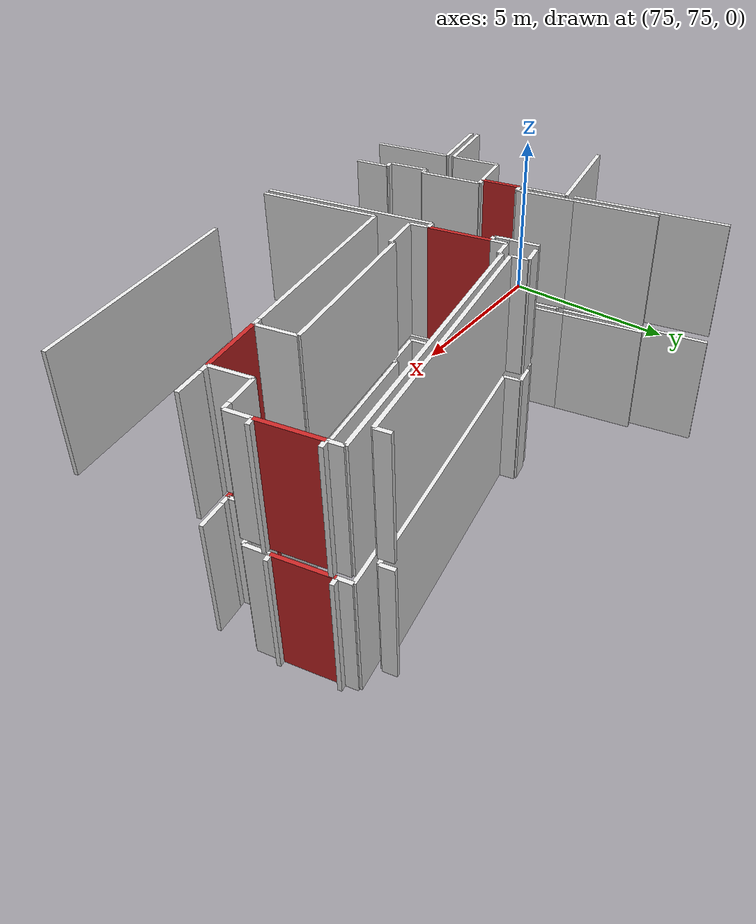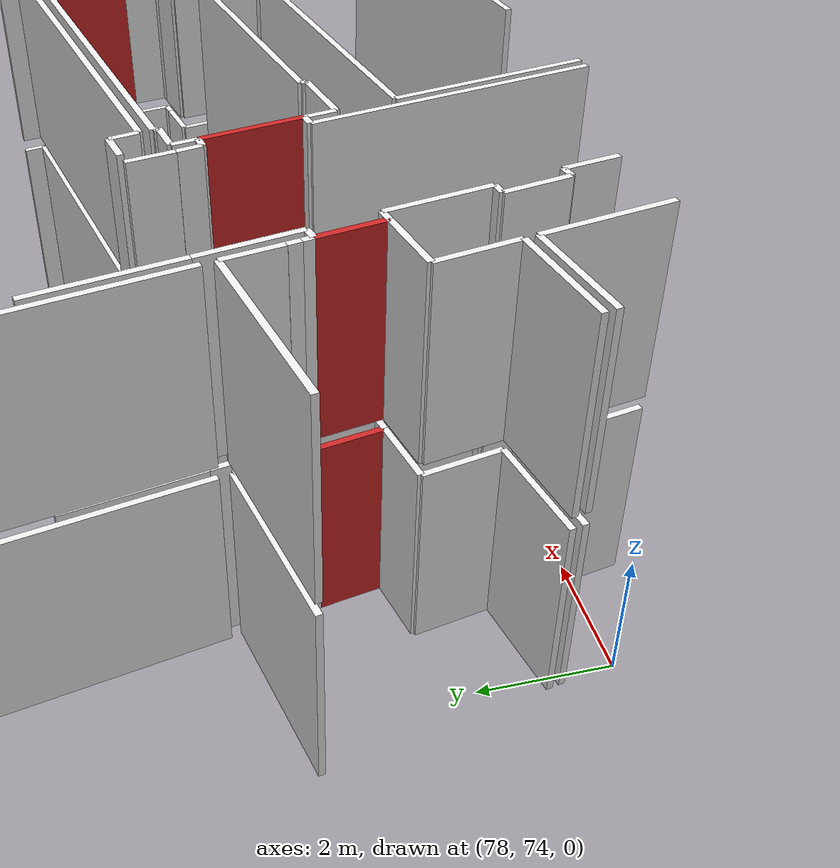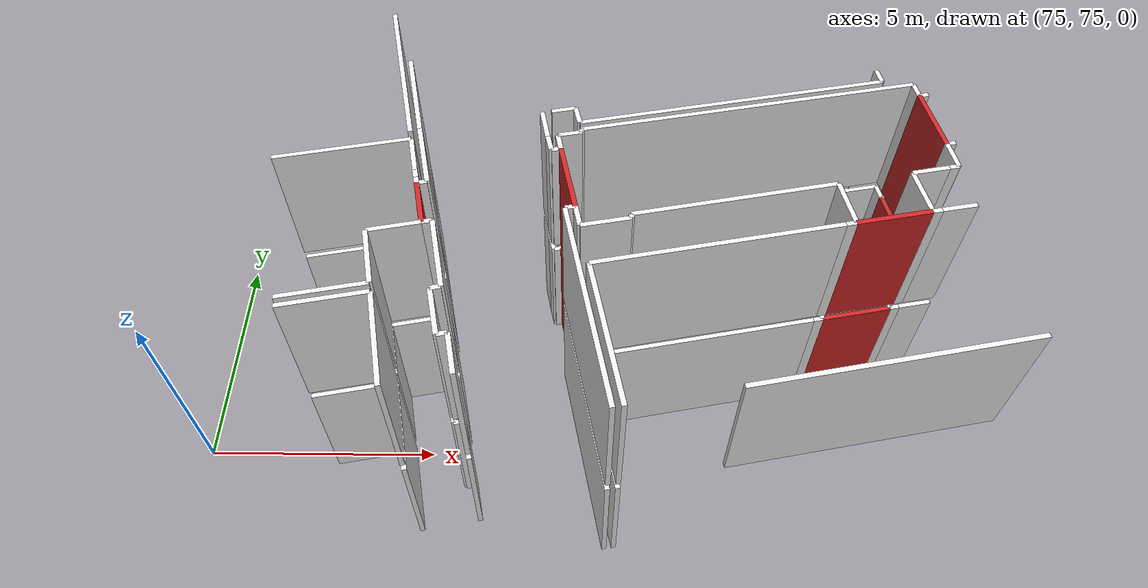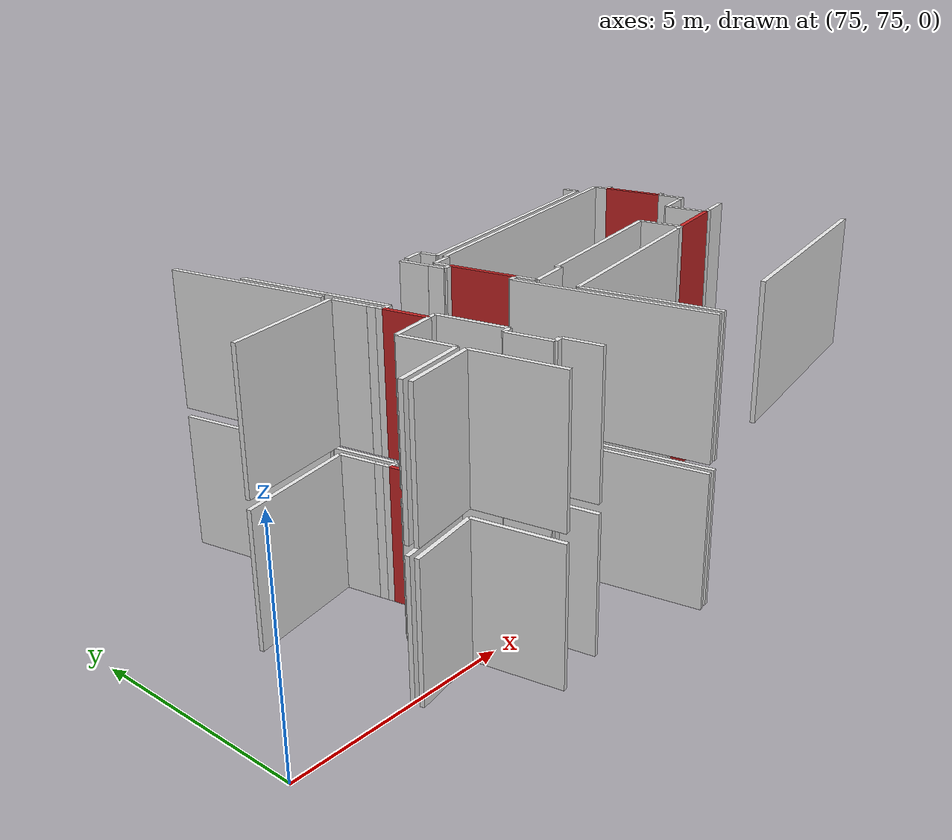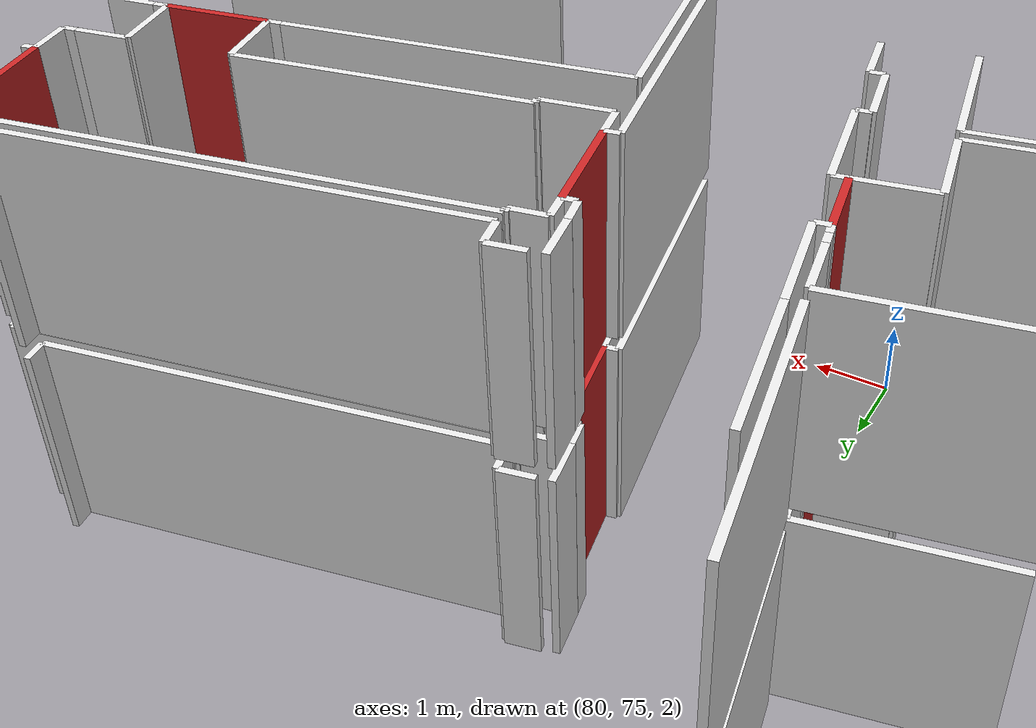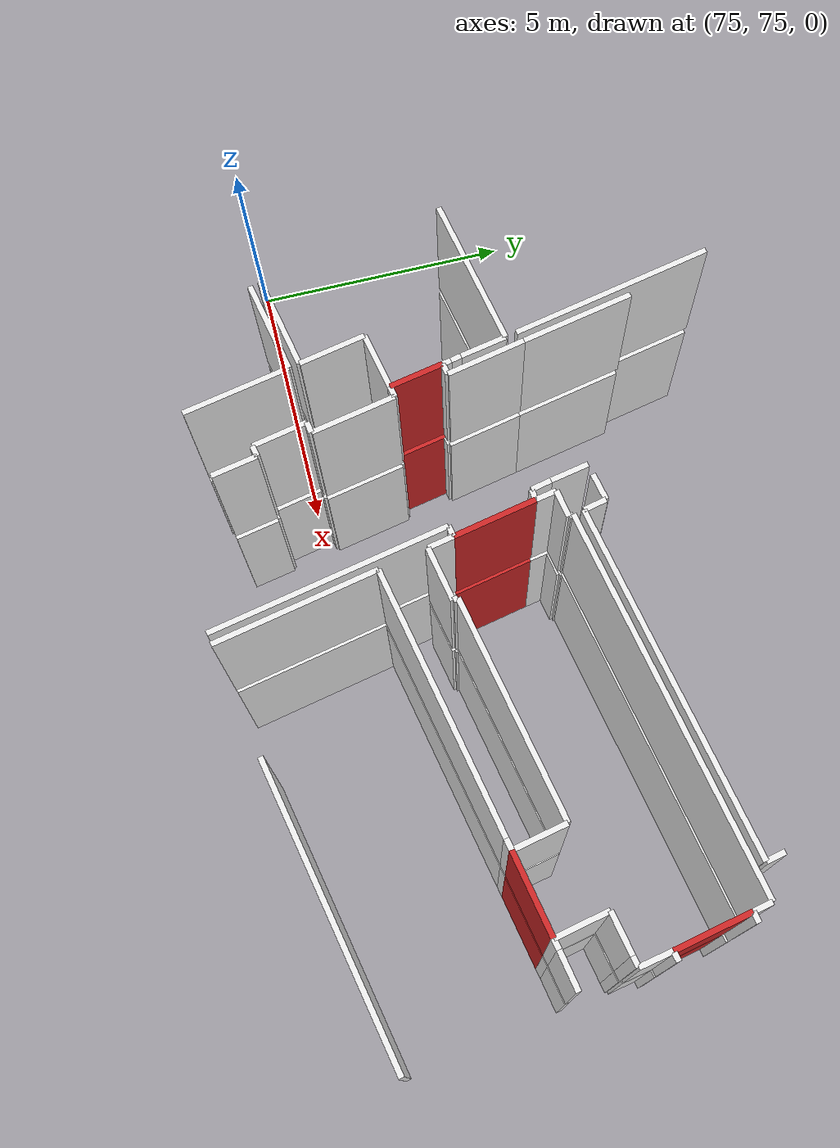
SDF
<sdf version="1.6">
 <world name="default">
  <model name="wall_80.2_77.2_0.0">
   <static>true</static>
   <pose>80.19499999997788 77.22500000009313 1.5 0 0 -1.3773690000310248</pose>
   <link name="link">
    <visual name="visual">
     <geometry><box><size>0.9884331031966657 0.1 3</size></box></geometry>
     <material>
      <script><uri>file://media/materials/scripts/gazebo.material</uri><name>Gazebo/Red</name></script>
     </material>
    </visual>
   </link>
  </model>
  <model name="wall_89.2_76.9_0.0">
   <static>true</static>
   <pose>89.17999999999302 76.94499999983236 1.5 0 0 0.19349440931601616</pose>
   <link name="link">
    <visual name="visual">
     <geometry><box><size>1.508144555394632 0.1 3</size></box></geometry>
     <material>
      <script><uri>file://media/materials/scripts/gazebo.material</uri><name>Gazebo/Red</name></script>
     </material>
    </visual>
   </link>
  </model>
  <model name="wall_83.0_77.9_0.0">
   <static>true</static>
   <pose>83.01999999998952 77.89500000001863 1.5 0 0 -1.3721104451170056</pose>
   <link name="link">
    <visual name="visual">
     <geometry><box><size>1.51990131280261 0.1 3</size></box></geometry>
     <material>
      <script><uri>file://media/materials/scripts/gazebo.material</uri><name>Gazebo/Red</name></script>
     </material>
    </visual>
   </link>
  </model>
  <model name="wall_90.4_79.5_0.0">
   <static>true</static>
   <pose>90.41000000000349 79.52499999990687 1.5 0 0 -1.369193218179265</pose>
   <link name="link">
    <visual name="visual">
     <geometry><box><size>1.3983204211800917 0.1 3</size></box></geometry>
     <material>
      <script><uri>file://media/materials/scripts/gazebo.material</uri><name>Gazebo/Red</name></script>
     </material>
    </visual>
   </link>
  </model>
  <model name="wall_79.8_76.6_0.0">
   <static>true</static>
   <pose>79.77499999999418 76.63500000000931 1.5 0 0 -2.9404657673681704</pose>
   <link name="link">
    <visual name="visual">
     <geometry><box><size>1.0511898021373587 0.1 3</size></box></geometry>
     <material>
      <script><uri>file://media/materials/scripts/gazebo.material</uri><name>Gazebo/White</name></script>
     </material>
    </visual>
   </link>
  </model>
  <model name="wall_79.4_75.9_0.0">
   <static>true</static>
   <pose>79.38000000000466 75.92999999993481 1.5 0 0 -1.3734007669077033</pose>
   <link name="link">
    <visual name="visual">
     <geometry><box><size>1.2237646829864708 0.1 3</size></box></geometry>
     <material>
      <script><uri>file://media/materials/scripts/gazebo.material</uri><name>Gazebo/White</name></script>
     </material>
    </visual>
   </link>
  </model>
  <model name="wall_78.7_75.2_0.0">
   <static>true</static>
   <pose>78.66500000000815 75.16500000003725 1.5 0 0 -2.946501237082923</pose>
   <link name="link">
    <visual name="visual">
     <geometry><box><size>1.7022925717968513 0.1 3</size></box></geometry>
     <material>
      <script><uri>file://media/materials/scripts/gazebo.material</uri><name>Gazebo/White</name></script>
     </material>
    </visual>
   </link>
  </model>
  <model name="wall_78.5_78.6_0.0">
   <static>true</static>
   <pose>78.51999999998952 78.61499999999069 1.5 0 0 0.19383178298877288</pose>
   <link name="link">
    <visual name="visual">
     <geometry><box><size>2.7515268488324223 0.1 3</size></box></geometry>
     <material>
      <script><uri>file://media/materials/scripts/gazebo.material</uri><name>Gazebo/White</name></script>
     </material>
    </visual>
   </link>
  </model>
  <model name="wall_80.0_78.5_0.0">
   <static>true</static>
   <pose>79.95000000001164 78.46499999985099 1.5 0 0 -1.3803612113601613</pose>
   <link name="link">
    <visual name="visual">
     <geometry><box><size>0.8452810184394953 0.1 3</size></box></geometry>
     <material>
      <script><uri>file://media/materials/scripts/gazebo.material</uri><name>Gazebo/White</name></script>
     </material>
    </visual>
   </link>
  </model>
  <model name="wall_80.1_78.0_0.0">
   <static>true</static>
   <pose>80.05000000001746 77.95499999984168 1.5 0 0 -1.363300100406013</pose>
   <link name="link">
    <visual name="visual">
     <geometry><box><size>0.19416487833047835 0.1 3</size></box></geometry>
     <material>
      <script><uri>file://media/materials/scripts/gazebo.material</uri><name>Gazebo/White</name></script>
     </material>
    </visual>
   </link>
  </model>
  <model name="wall_80.1_77.8_0.0">
   <static>true</static>
   <pose>80.08499999999185 77.78499999991618 1.5 0 0 -1.373400767019641</pose>
   <link name="link">
    <visual name="visual">
     <geometry><box><size>0.15297058531052382 0.1 3</size></box></geometry>
     <material>
      <script><uri>file://media/materials/scripts/gazebo.material</uri><name>Gazebo/White</name></script>
     </material>
    </visual>
   </link>
  </model>
  <model name="wall_79.5_80.9_0.0">
   <static>true</static>
   <pose>79.46499999999651 80.88500000000931 1.5 0 0 1.7703218088940849</pose>
   <link name="link">
    <visual name="visual">
     <geometry><box><size>3.683069372020626 0.1 3</size></box></geometry>
     <material>
      <script><uri>file://media/materials/scripts/gazebo.material</uri><name>Gazebo/White</name></script>
     </material>
    </visual>
   </link>
  </model>
  <model name="wall_79.7_74.2_0.0">
   <static>true</static>
   <pose>79.72999999998137 74.17500000004657 1.5 0 0 1.76520086863083</pose>
   <link name="link">
    <visual name="visual">
     <geometry><box><size>1.967053634411279 0.1 3</size></box></geometry>
     <material>
      <script><uri>file://media/materials/scripts/gazebo.material</uri><name>Gazebo/White</name></script>
     </material>
    </visual>
   </link>
  </model>
  <model name="wall_78.7_75.0_0.0">
   <static>true</static>
   <pose>78.7049999999872 74.97500000009313 1.5 0 0 -2.946501237082923</pose>
   <link name="link">
    <visual name="visual">
     <geometry><box><size>1.7022925717968513 0.1 3</size></box></geometry>
     <material>
      <script><uri>file://media/materials/scripts/gazebo.material</uri><name>Gazebo/White</name></script>
     </material>
    </visual>
   </link>
  </model>
  <model name="wall_88.3_76.8_0.0">
   <static>true</static>
   <pose>88.33999999999651 76.77999999979511 1.5 0 0 -2.9441970935720057</pose>
   <link name="link">
    <visual name="visual">
     <geometry><box><size>0.20396078056243275 0.1 3</size></box></geometry>
     <material>
      <script><uri>file://media/materials/scripts/gazebo.material</uri><name>Gazebo/White</name></script>
     </material>
    </visual>
   </link>
  </model>
  <model name="wall_85.8_76.3_0.0">
   <static>true</static>
   <pose>85.83499999999185 76.28499999991618 1.5 0 0 -2.946597089187742</pose>
   <link name="link">
    <visual name="visual">
     <geometry><box><size>4.902917498739577 0.1 3</size></box></geometry>
     <material>
      <script><uri>file://media/materials/scripts/gazebo.material</uri><name>Gazebo/White</name></script>
     </material>
    </visual>
   </link>
  </model>
  <model name="wall_83.7_74.3_0.0">
   <static>true</static>
   <pose>83.72500000000582 74.34000000008382 1.5 0 0 -1.3727467447894708</pose>
   <link name="link">
    <visual name="visual">
     <geometry><box><size>2.9986163475345844 0.1 3</size></box></geometry>
     <material>
      <script><uri>file://media/materials/scripts/gazebo.material</uri><name>Gazebo/White</name></script>
     </material>
    </visual>
   </link>
  </model>
  <model name="wall_90.5_77.2_0.0">
   <static>true</static>
   <pose>90.4549999999872 77.19499999983236 1.5 0 0 -2.9553698133356825</pose>
   <link name="link">
    <visual name="visual">
     <geometry><box><size>0.7021395872432744 0.1 3</size></box></geometry>
     <material>
      <script><uri>file://media/materials/scripts/gazebo.material</uri><name>Gazebo/White</name></script>
     </material>
    </visual>
   </link>
  </model>
  <model name="wall_90.0_77.1_0.0">
   <static>true</static>
   <pose>90.01499999998487 77.10999999986961 1.5 0 0 -2.9340964269693144</pose>
   <link name="link">
    <visual name="visual">
     <geometry><box><size>0.19416487839942884 0.1 3</size></box></geometry>
     <material>
      <script><uri>file://media/materials/scripts/gazebo.material</uri><name>Gazebo/White</name></script>
     </material>
    </visual>
   </link>
  </model>
  <model name="wall_80.4_76.8_0.0">
   <static>true</static>
   <pose>80.38999999998487 76.76000000000931 1.5 0 0 -2.944197095810762</pose>
   <link name="link">
    <visual name="visual">
     <geometry><box><size>0.20396078047110908 0.1 3</size></box></geometry>
     <material>
      <script><uri>file://media/materials/scripts/gazebo.material</uri><name>Gazebo/White</name></script>
     </material>
    </visual>
   </link>
  </model>
  <model name="wall_80.2_77.7_0.0">
   <static>true</static>
   <pose>80.19999999998254 77.72999999998137 1.5 0 0 0.19739556001778746</pose>
   <link name="link">
    <visual name="visual">
     <geometry><box><size>0.20396078056243275 0.1 3</size></box></geometry>
     <material>
      <script><uri>file://media/materials/scripts/gazebo.material</uri><name>Gazebo/White</name></script>
     </material>
    </visual>
   </link>
  </model>
  <model name="wall_80.2_78.5_0.0">
   <static>true</static>
   <pose>80.15499999999884 78.45999999996275 1.5 0 0 1.772251404259705</pose>
   <link name="link">
    <visual name="visual">
     <geometry><box><size>1.449310180663977 0.1 3</size></box></geometry>
     <material>
      <script><uri>file://media/materials/scripts/gazebo.material</uri><name>Gazebo/White</name></script>
     </material>
    </visual>
   </link>
  </model>
  <model name="wall_79.8_80.2_0.0">
   <static>true</static>
   <pose>79.80999999999767 80.17500000004657 1.5 0 0 1.7672349491259145</pose>
   <link name="link">
    <visual name="visual">
     <geometry><box><size>2.0494145507905532 0.1 3</size></box></geometry>
     <material>
      <script><uri>file://media/materials/scripts/gazebo.material</uri><name>Gazebo/White</name></script>
     </material>
    </visual>
   </link>
  </model>
  <model name="wall_82.5_79.3_0.0">
   <static>true</static>
   <pose>82.53499999997439 79.31000000005588 1.5 0 0 -1.3818991458298349</pose>
   <link name="link">
    <visual name="visual">
     <geometry><box><size>0.6923149569349915 0.1 3</size></box></geometry>
     <material>
      <script><uri>file://media/materials/scripts/gazebo.material</uri><name>Gazebo/White</name></script>
     </material>
    </visual>
   </link>
  </model>
  <model name="wall_82.6_78.8_0.0">
   <static>true</static>
   <pose>82.63999999998487 78.79000000003725 1.5 0 0 -1.3521273810750338</pose>
   <link name="link">
    <visual name="visual">
     <geometry><box><size>0.3687817786225433 0.1 3</size></box></geometry>
     <material>
      <script><uri>file://media/materials/scripts/gazebo.material</uri><name>Gazebo/White</name></script>
     </material>
    </visual>
   </link>
  </model>
  <model name="wall_82.8_78.6_0.0">
   <static>true</static>
   <pose>82.77499999999418 78.625 1.5 0 0 0.15660187831921837</pose>
   <link name="link">
    <visual name="visual">
     <geometry><box><size>0.19235384065968367 0.1 3</size></box></geometry>
     <material>
      <script><uri>file://media/materials/scripts/gazebo.material</uri><name>Gazebo/White</name></script>
     </material>
    </visual>
   </link>
  </model>
  <model name="wall_83.1_77.1_0.0">
   <static>true</static>
   <pose>83.06999999997788 77.12999999988824 1.5 0 0 -2.9441970935720057</pose>
   <link name="link">
    <visual name="visual">
     <geometry><box><size>0.20396078056243275 0.1 3</size></box></geometry>
     <material>
      <script><uri>file://media/materials/scripts/gazebo.material</uri><name>Gazebo/White</name></script>
     </material>
    </visual>
   </link>
  </model>
  <model name="wall_83.4_75.0_0.0">
   <static>true</static>
   <pose>83.39499999998952 74.9749999998603 1.5 0 0 -1.3743016675951543</pose>
   <link name="link">
    <visual name="visual">
     <geometry><box><size>4.353779966904442 0.1 3</size></box></geometry>
     <material>
      <script><uri>file://media/materials/scripts/gazebo.material</uri><name>Gazebo/White</name></script>
     </material>
    </visual>
   </link>
  </model>
  <model name="wall_81.1_73.9_0.0">
   <static>true</static>
   <pose>81.07000000000698 73.86499999999069 1.5 0 0 1.7612314423339088</pose>
   <link name="link">
    <visual name="visual">
     <geometry><box><size>0.8452810179822523 0.1 3</size></box></geometry>
     <material>
      <script><uri>file://media/materials/scripts/gazebo.material</uri><name>Gazebo/White</name></script>
     </material>
    </visual>
   </link>
  </model>
  <model name="wall_80.9_74.3_0.0">
   <static>true</static>
   <pose>80.88999999998487 74.26000000000931 1.5 0 0 -2.944197095810762</pose>
   <link name="link">
    <visual name="visual">
     <geometry><box><size>0.20396078047110908 0.1 3</size></box></geometry>
     <material>
      <script><uri>file://media/materials/scripts/gazebo.material</uri><name>Gazebo/White</name></script>
     </material>
    </visual>
   </link>
  </model>
  <model name="wall_80.7_74.7_0.0">
   <static>true</static>
   <pose>80.69000000000233 74.7300000002142 1.5 0 0 1.7721134351276446</pose>
   <link name="link">
    <visual name="visual">
     <geometry><box><size>1.0001999799764374 0.1 3</size></box></geometry>
     <material>
      <script><uri>file://media/materials/scripts/gazebo.material</uri><name>Gazebo/White</name></script>
     </material>
    </visual>
   </link>
  </model>
  <model name="wall_80.7_75.2_0.0">
   <static>true</static>
   <pose>80.69000000000233 75.23999999999069 1.5 0 0 0.19739555783500018</pose>
   <link name="link">
    <visual name="visual">
     <geometry><box><size>0.20396078041403173 0.1 3</size></box></geometry>
     <material>
      <script><uri>file://media/materials/scripts/gazebo.material</uri><name>Gazebo/White</name></script>
     </material>
    </visual>
   </link>
  </model>
  <model name="wall_80.6_76.0_0.0">
   <static>true</static>
   <pose>80.63999999998487 76.0199999997858 1.5 0 0 1.765660246474069</pose>
   <link name="link">
    <visual name="visual">
     <geometry><box><size>1.5493224325651649 0.1 3</size></box></geometry>
     <material>
      <script><uri>file://media/materials/scripts/gazebo.material</uri><name>Gazebo/White</name></script>
     </material>
    </visual>
   </link>
  </model>
  <model name="wall_90.6_78.9_0.0">
   <static>true</static>
   <pose>90.63999999998487 78.85999999986961 1.5 0 0 -2.9229237075104124</pose>
   <link name="link">
    <visual name="visual">
     <geometry><box><size>0.18439088914712043 0.1 3</size></box></geometry>
     <material>
      <script><uri>file://media/materials/scripts/gazebo.material</uri><name>Gazebo/White</name></script>
     </material>
    </visual>
   </link>
  </model>
  <model name="wall_90.4_80.2_0.0">
   <static>true</static>
   <pose>90.36500000001979 80.22999999998137 1.5 0 0 0.20749622662047904</pose>
   <link name="link">
    <visual name="visual">
     <geometry><box><size>0.19416487839942884 0.1 3</size></box></geometry>
     <material>
      <script><uri>file://media/materials/scripts/gazebo.material</uri><name>Gazebo/White</name></script>
     </material>
    </visual>
   </link>
  </model>
  <model name="wall_90.2_80.4_0.0">
   <static>true</static>
   <pose>90.23500000001513 80.37999999988824 1.5 0 0 -1.3677511094351602</pose>
   <link name="link">
    <visual name="visual">
     <geometry><box><size>0.34713109900965367 0.1 3</size></box></geometry>
     <material>
      <script><uri>file://media/materials/scripts/gazebo.material</uri><name>Gazebo/White</name></script>
     </material>
    </visual>
   </link>
  </model>
  <model name="wall_90.6_78.5_0.0">
   <static>true</static>
   <pose>90.60499999998137 78.5449999999255 1.5 0 0 -1.386471917872574</pose>
   <link name="link">
    <visual name="visual">
     <geometry><box><size>0.6001666433758985 0.1 3</size></box></geometry>
     <material>
      <script><uri>file://media/materials/scripts/gazebo.material</uri><name>Gazebo/White</name></script>
     </material>
    </visual>
   </link>
  </model>
  <model name="wall_90.6_78.2_0.0">
   <static>true</static>
   <pose>90.56499999997322 78.22999999998137 1.5 0 0 -2.9340964269693144</pose>
   <link name="link">
    <visual name="visual">
     <geometry><box><size>0.19416487839942884 0.1 3</size></box></geometry>
     <material>
      <script><uri>file://media/materials/scripts/gazebo.material</uri><name>Gazebo/White</name></script>
     </material>
    </visual>
   </link>
  </model>
  <model name="wall_90.1_78.1_0.0">
   <static>true</static>
   <pose>90.09499999997206 78.13500000000931 1.5 0 0 -2.9441970938593127</pose>
   <link name="link">
    <visual name="visual">
     <geometry><box><size>0.764852927020653 0.1 3</size></box></geometry>
     <material>
      <script><uri>file://media/materials/scripts/gazebo.material</uri><name>Gazebo/White</name></script>
     </material>
    </visual>
   </link>
  </model>
  <model name="wall_89.8_77.6_0.0">
   <static>true</static>
   <pose>89.81999999997788 77.57499999995343 1.5 0 0 -1.367460242796885</pose>
   <link name="link">
    <visual name="visual">
     <geometry><box><size>0.990403958191881 0.1 3</size></box></geometry>
     <material>
      <script><uri>file://media/materials/scripts/gazebo.material</uri><name>Gazebo/White</name></script>
     </material>
    </visual>
   </link>
  </model>
  <model name="wall_88.3_77.3_0.0">
   <static>true</static>
   <pose>88.33999999999651 77.28499999991618 1.5 0 0 1.7741324107929084</pose>
   <link name="link">
    <visual name="visual">
     <geometry><box><size>0.990403958191881 0.1 3</size></box></geometry>
     <material>
      <script><uri>file://media/materials/scripts/gazebo.material</uri><name>Gazebo/White</name></script>
     </material>
    </visual>
   </link>
  </model>
  <model name="wall_86.2_77.4_0.0">
   <static>true</static>
   <pose>86.22999999998137 77.37000000011176 1.5 0 0 -2.9451540312923132</pose>
   <link name="link">
    <visual name="visual">
     <geometry><box><size>4.098829101078957 0.1 3</size></box></geometry>
     <material>
      <script><uri>file://media/materials/scripts/gazebo.material</uri><name>Gazebo/White</name></script>
     </material>
    </visual>
   </link>
  </model>
  <model name="wall_84.2_76.9_0.0">
   <static>true</static>
   <pose>84.22999999998137 76.92500000004657 1.5 0 0 -1.3521273814687915</pose>
   <link name="link">
    <visual name="visual">
     <geometry><box><size>0.09219544488607884 0.1 3</size></box></geometry>
     <material>
      <script><uri>file://media/materials/scripts/gazebo.material</uri><name>Gazebo/White</name></script>
     </material>
    </visual>
   </link>
  </model>
  <model name="wall_83.8_76.8_0.0">
   <static>true</static>
   <pose>83.75 76.78499999991618 1.5 0 0 -2.950090935171577</pose>
   <link name="link">
    <visual name="visual">
     <geometry><box><size>0.9982484660355146 0.1 3</size></box></geometry>
     <material>
      <script><uri>file://media/materials/scripts/gazebo.material</uri><name>Gazebo/White</name></script>
     </material>
    </visual>
   </link>
  </model>
  <model name="wall_83.2_76.9_0.0">
   <static>true</static>
   <pose>83.21499999999651 76.9199999999255 1.5 0 0 1.7640078107115875</pose>
   <link name="link">
    <visual name="visual">
     <geometry><box><size>0.4687216657786766 0.1 3</size></box></geometry>
     <material>
      <script><uri>file://media/materials/scripts/gazebo.material</uri><name>Gazebo/White</name></script>
     </material>
    </visual>
   </link>
  </model>
  <model name="wall_82.8_78.8_0.0">
   <static>true</static>
   <pose>82.83499999999185 78.82499999995343 1.5 0 0 1.7577755969067386</pose>
   <link name="link">
    <visual name="visual">
     <geometry><box><size>0.37656340732881893 0.1 3</size></box></geometry>
     <material>
      <script><uri>file://media/materials/scripts/gazebo.material</uri><name>Gazebo/White</name></script>
     </material>
    </visual>
   </link>
  </model>
  <model name="wall_83.0_79.1_0.0">
   <static>true</static>
   <pose>83.0449999999837 79.05499999993481 1.5 0 0 0.18164883062852336</pose>
   <link name="link">
    <visual name="visual">
     <geometry><box><size>0.49819674833128924 0.1 3</size></box></geometry>
     <material>
      <script><uri>file://media/materials/scripts/gazebo.material</uri><name>Gazebo/White</name></script>
     </material>
    </visual>
   </link>
  </model>
  <model name="wall_83.3_79.1_0.0">
   <static>true</static>
   <pose>83.27999999999884 79.14000000013039 1.5 0 0 1.8157749892369648</pose>
   <link name="link">
    <visual name="visual">
     <geometry><box><size>0.08246211257503461 0.1 3</size></box></geometry>
     <material>
      <script><uri>file://media/materials/scripts/gazebo.material</uri><name>Gazebo/White</name></script>
     </material>
    </visual>
   </link>
  </model>
  <model name="wall_86.7_79.9_0.0">
   <static>true</static>
   <pose>86.73500000001513 79.86499999999069 1.5 0 0 0.1951745751129922</pose>
   <link name="link">
    <visual name="visual">
     <geometry><box><size>7.064120610446391 0.1 3</size></box></geometry>
     <material>
      <script><uri>file://media/materials/scripts/gazebo.material</uri><name>Gazebo/White</name></script>
     </material>
    </visual>
   </link>
  </model>
  <model name="wall_82.9_79.7_0.0">
   <static>true</static>
   <pose>82.90499999999884 79.72999999998137 1.5 0 0 0.20131710762522587</pose>
   <link name="link">
    <visual name="visual">
     <geometry><box><size>0.5000999899754156 0.1 3</size></box></geometry>
     <material>
      <script><uri>file://media/materials/scripts/gazebo.material</uri><name>Gazebo/White</name></script>
     </material>
    </visual>
   </link>
  </model>
  <model name="wall_83.2_79.6_0.0">
   <static>true</static>
   <pose>83.19500000000698 79.57499999995343 1.5 0 0 -1.3547113544122191</pose>
   <link name="link">
    <visual name="visual">
     <geometry><box><size>0.41976183692003244 0.1 3</size></box></geometry>
     <material>
      <script><uri>file://media/materials/scripts/gazebo.material</uri><name>Gazebo/White</name></script>
     </material>
    </visual>
   </link>
  </model>
  <model name="wall_86.4_80.0_0.0">
   <static>true</static>
   <pose>86.40499999999884 80.0 1.5 0 0 0.19648398303966225</pose>
   <link name="link">
    <visual name="visual">
     <geometry><box><size>6.454184688993883 0.1 3</size></box></geometry>
     <material>
      <script><uri>file://media/materials/scripts/gazebo.material</uri><name>Gazebo/White</name></script>
     </material>
    </visual>
   </link>
  </model>
  <model name="wall_89.5_80.8_0.0">
   <static>true</static>
   <pose>89.53500000000349 80.80000000004657 1.5 0 0 1.7738415438841244</pose>
   <link name="link">
    <visual name="visual">
     <geometry><box><size>0.34713109946574894 0.1 3</size></box></geometry>
     <material>
      <script><uri>file://media/materials/scripts/gazebo.material</uri><name>Gazebo/White</name></script>
     </material>
    </visual>
   </link>
  </model>
  <model name="wall_80.2_77.2_3.2">
   <static>true</static>
   <pose>80.19499999997788 77.22500000009313 4.7 0 0 -1.3773690000310248</pose>
   <link name="link">
    <visual name="visual">
     <geometry><box><size>0.9884331031966657 0.1 3</size></box></geometry>
     <material>
      <script><uri>file://media/materials/scripts/gazebo.material</uri><name>Gazebo/Red</name></script>
     </material>
    </visual>
   </link>
  </model>
  <model name="wall_89.2_76.9_3.2">
   <static>true</static>
   <pose>89.17999999999302 76.94499999983236 4.7 0 0 0.19349440931601616</pose>
   <link name="link">
    <visual name="visual">
     <geometry><box><size>1.508144555394632 0.1 3</size></box></geometry>
     <material>
      <script><uri>file://media/materials/scripts/gazebo.material</uri><name>Gazebo/Red</name></script>
     </material>
    </visual>
   </link>
  </model>
  <model name="wall_83.0_77.9_3.2">
   <static>true</static>
   <pose>83.01999999998952 77.89500000001863 4.7 0 0 -1.3721104451170056</pose>
   <link name="link">
    <visual name="visual">
     <geometry><box><size>1.51990131280261 0.1 3</size></box></geometry>
     <material>
      <script><uri>file://media/materials/scripts/gazebo.material</uri><name>Gazebo/Red</name></script>
     </material>
    </visual>
   </link>
  </model>
  <model name="wall_90.4_79.5_3.2">
   <static>true</static>
   <pose>90.41000000000349 79.52499999990687 4.7 0 0 -1.369193218179265</pose>
   <link name="link">
    <visual name="visual">
     <geometry><box><size>1.3983204211800917 0.1 3</size></box></geometry>
     <material>
      <script><uri>file://media/materials/scripts/gazebo.material</uri><name>Gazebo/Red</name></script>
     </material>
    </visual>
   </link>
  </model>
  <model name="wall_79.8_76.6_3.2">
   <static>true</static>
   <pose>79.77499999999418 76.63500000000931 4.7 0 0 -2.9404657673681704</pose>
   <link name="link">
    <visual name="visual">
     <geometry><box><size>1.0511898021373587 0.1 3</size></box></geometry>
     <material>
      <script><uri>file://media/materials/scripts/gazebo.material</uri><name>Gazebo/White</name></script>
     </material>
    </visual>
   </link>
  </model>
  <model name="wall_79.4_75.9_3.2">
   <static>true</static>
   <pose>79.38000000000466 75.92999999993481 4.7 0 0 -1.3734007669077033</pose>
   <link name="link">
    <visual name="visual">
     <geometry><box><size>1.2237646829864708 0.1 3</size></box></geometry>
     <material>
      <script><uri>file://media/materials/scripts/gazebo.material</uri><name>Gazebo/White</name></script>
     </material>
    </visual>
   </link>
  </model>
  <model name="wall_78.7_75.2_3.2">
   <static>true</static>
   <pose>78.66500000000815 75.16500000003725 4.7 0 0 -2.946501237082923</pose>
   <link name="link">
    <visual name="visual">
     <geometry><box><size>1.7022925717968513 0.1 3</size></box></geometry>
     <material>
      <script><uri>file://media/materials/scripts/gazebo.material</uri><name>Gazebo/White</name></script>
     </material>
    </visual>
   </link>
  </model>
  <model name="wall_78.5_78.6_3.2">
   <static>true</static>
   <pose>78.51999999998952 78.61499999999069 4.7 0 0 0.19383178298877288</pose>
   <link name="link">
    <visual name="visual">
     <geometry><box><size>2.7515268488324223 0.1 3</size></box></geometry>
     <material>
      <script><uri>file://media/materials/scripts/gazebo.material</uri><name>Gazebo/White</name></script>
     </material>
    </visual>
   </link>
  </model>
  <model name="wall_80.0_78.5_3.2">
   <static>true</static>
   <pose>79.95000000001164 78.46499999985099 4.7 0 0 -1.3803612113601613</pose>
   <link name="link">
    <visual name="visual">
     <geometry><box><size>0.8452810184394953 0.1 3</size></box></geometry>
     <material>
      <script><uri>file://media/materials/scripts/gazebo.material</uri><name>Gazebo/White</name></script>
     </material>
    </visual>
   </link>
  </model>
  <model name="wall_80.1_78.0_3.2">
   <static>true</static>
   <pose>80.05000000001746 77.95499999984168 4.7 0 0 -1.363300100406013</pose>
   <link name="link">
    <visual name="visual">
     <geometry><box><size>0.19416487833047835 0.1 3</size></box></geometry>
     <material>
      <script><uri>file://media/materials/scripts/gazebo.material</uri><name>Gazebo/White</name></script>
     </material>
    </visual>
   </link>
  </model>
  <model name="wall_80.1_77.8_3.2">
   <static>true</static>
   <pose>80.08499999999185 77.78499999991618 4.7 0 0 -1.373400767019641</pose>
   <link name="link">
    <visual name="visual">
     <geometry><box><size>0.15297058531052382 0.1 3</size></box></geometry>
     <material>
      <script><uri>file://media/materials/scripts/gazebo.material</uri><name>Gazebo/White</name></script>
     </material>
    </visual>
   </link>
  </model>
  <model name="wall_79.5_80.9_3.2">
   <static>true</static>
   <pose>79.46499999999651 80.88500000000931 4.7 0 0 1.7703218088940849</pose>
   <link name="link">
    <visual name="visual">
     <geometry><box><size>3.683069372020626 0.1 3</size></box></geometry>
     <material>
      <script><uri>file://media/materials/scripts/gazebo.material</uri><name>Gazebo/White</name></script>
     </material>
    </visual>
   </link>
  </model>
  <model name="wall_79.7_74.2_3.2">
   <static>true</static>
   <pose>79.72999999998137 74.17500000004657 4.7 0 0 1.76520086863083</pose>
   <link name="link">
    <visual name="visual">
     <geometry><box><size>1.967053634411279 0.1 3</size></box></geometry>
     <material>
      <script><uri>file://media/materials/scripts/gazebo.material</uri><name>Gazebo/White</name></script>
     </material>
    </visual>
   </link>
  </model>
  <model name="wall_78.7_75.0_3.2">
   <static>true</static>
   <pose>78.7049999999872 74.97500000009313 4.7 0 0 -2.946501237082923</pose>
   <link name="link">
    <visual name="visual">
     <geometry><box><size>1.7022925717968513 0.1 3</size></box></geometry>
     <material>
      <script><uri>file://media/materials/scripts/gazebo.material</uri><name>Gazebo/White</name></script>
     </material>
    </visual>
   </link>
  </model>
  <model name="wall_88.3_76.8_3.2">
   <static>true</static>
   <pose>88.33999999999651 76.77999999979511 4.7 0 0 -2.9441970935720057</pose>
   <link name="link">
    <visual name="visual">
     <geometry><box><size>0.20396078056243275 0.1 3</size></box></geometry>
     <material>
      <script><uri>file://media/materials/scripts/gazebo.material</uri><name>Gazebo/White</name></script>
     </material>
    </visual>
   </link>
  </model>
  <model name="wall_85.8_76.3_3.2">
   <static>true</static>
   <pose>85.83499999999185 76.28499999991618 4.7 0 0 -2.946597089187742</pose>
   <link name="link">
    <visual name="visual">
     <geometry><box><size>4.902917498739577 0.1 3</size></box></geometry>
     <material>
      <script><uri>file://media/materials/scripts/gazebo.material</uri><name>Gazebo/White</name></script>
     </material>
    </visual>
   </link>
  </model>
  <model name="wall_83.7_74.3_3.2">
   <static>true</static>
   <pose>83.72500000000582 74.34000000008382 4.7 0 0 -1.3727467447894708</pose>
   <link name="link">
    <visual name="visual">
     <geometry><box><size>2.9986163475345844 0.1 3</size></box></geometry>
     <material>
      <script><uri>file://media/materials/scripts/gazebo.material</uri><name>Gazebo/White</name></script>
     </material>
    </visual>
   </link>
  </model>
  <model name="wall_88.7_73.8_3.2">
   <static>true</static>
   <pose>88.7050000000163 73.80000000004657 4.7 0 0 0.1955976473787338</pose>
   <link name="link">
    <visual name="visual">
     <geometry><box><size>5.4539985331744765 0.1 3</size></box></geometry>
     <material>
      <script><uri>file://media/materials/scripts/gazebo.material</uri><name>Gazebo/White</name></script>
     </material>
    </visual>
   </link>
  </model>
  <model name="wall_90.5_77.2_3.2">
   <static>true</static>
   <pose>90.4549999999872 77.19499999983236 4.7 0 0 -2.9553698133356825</pose>
   <link name="link">
    <visual name="visual">
     <geometry><box><size>0.7021395872432744 0.1 3</size></box></geometry>
     <material>
      <script><uri>file://media/materials/scripts/gazebo.material</uri><name>Gazebo/White</name></script>
     </material>
    </visual>
   </link>
  </model>
  <model name="wall_90.0_77.1_3.2">
   <static>true</static>
   <pose>90.01499999998487 77.10999999986961 4.7 0 0 -2.9340964269693144</pose>
   <link name="link">
    <visual name="visual">
     <geometry><box><size>0.19416487839942884 0.1 3</size></box></geometry>
     <material>
      <script><uri>file://media/materials/scripts/gazebo.material</uri><name>Gazebo/White</name></script>
     </material>
    </visual>
   </link>
  </model>
  <model name="wall_80.4_76.8_3.2">
   <static>true</static>
   <pose>80.38999999998487 76.76000000000931 4.7 0 0 -2.944197095810762</pose>
   <link name="link">
    <visual name="visual">
     <geometry><box><size>0.20396078047110908 0.1 3</size></box></geometry>
     <material>
      <script><uri>file://media/materials/scripts/gazebo.material</uri><name>Gazebo/White</name></script>
     </material>
    </visual>
   </link>
  </model>
  <model name="wall_80.2_77.7_3.2">
   <static>true</static>
   <pose>80.19999999998254 77.72999999998137 4.7 0 0 0.19739556001778746</pose>
   <link name="link">
    <visual name="visual">
     <geometry><box><size>0.20396078056243275 0.1 3</size></box></geometry>
     <material>
      <script><uri>file://media/materials/scripts/gazebo.material</uri><name>Gazebo/White</name></script>
     </material>
    </visual>
   </link>
  </model>
  <model name="wall_80.2_78.5_3.2">
   <static>true</static>
   <pose>80.15499999999884 78.45999999996275 4.7 0 0 1.772251404259705</pose>
   <link name="link">
    <visual name="visual">
     <geometry><box><size>1.449310180663977 0.1 3</size></box></geometry>
     <material>
      <script><uri>file://media/materials/scripts/gazebo.material</uri><name>Gazebo/White</name></script>
     </material>
    </visual>
   </link>
  </model>
  <model name="wall_79.8_80.2_3.2">
   <static>true</static>
   <pose>79.80999999999767 80.17500000004657 4.7 0 0 1.7672349491259145</pose>
   <link name="link">
    <visual name="visual">
     <geometry><box><size>2.0494145507905532 0.1 3</size></box></geometry>
     <material>
      <script><uri>file://media/materials/scripts/gazebo.material</uri><name>Gazebo/White</name></script>
     </material>
    </visual>
   </link>
  </model>
  <model name="wall_82.5_79.3_3.2">
   <static>true</static>
   <pose>82.53499999997439 79.31000000005588 4.7 0 0 -1.3818991458298349</pose>
   <link name="link">
    <visual name="visual">
     <geometry><box><size>0.6923149569349915 0.1 3</size></box></geometry>
     <material>
      <script><uri>file://media/materials/scripts/gazebo.material</uri><name>Gazebo/White</name></script>
     </material>
    </visual>
   </link>
  </model>
  <model name="wall_82.6_78.8_3.2">
   <static>true</static>
   <pose>82.63999999998487 78.79000000003725 4.7 0 0 -1.3521273810750338</pose>
   <link name="link">
    <visual name="visual">
     <geometry><box><size>0.3687817786225433 0.1 3</size></box></geometry>
     <material>
      <script><uri>file://media/materials/scripts/gazebo.material</uri><name>Gazebo/White</name></script>
     </material>
    </visual>
   </link>
  </model>
  <model name="wall_82.8_78.6_3.2">
   <static>true</static>
   <pose>82.77499999999418 78.625 4.7 0 0 0.15660187831921837</pose>
   <link name="link">
    <visual name="visual">
     <geometry><box><size>0.19235384065968367 0.1 3</size></box></geometry>
     <material>
      <script><uri>file://media/materials/scripts/gazebo.material</uri><name>Gazebo/White</name></script>
     </material>
    </visual>
   </link>
  </model>
  <model name="wall_83.1_77.1_3.2">
   <static>true</static>
   <pose>83.06999999997788 77.12999999988824 4.7 0 0 -2.9441970935720057</pose>
   <link name="link">
    <visual name="visual">
     <geometry><box><size>0.20396078056243275 0.1 3</size></box></geometry>
     <material>
      <script><uri>file://media/materials/scripts/gazebo.material</uri><name>Gazebo/White</name></script>
     </material>
    </visual>
   </link>
  </model>
  <model name="wall_83.4_75.0_3.2">
   <static>true</static>
   <pose>83.39499999998952 74.9749999998603 4.7 0 0 -1.3743016675951543</pose>
   <link name="link">
    <visual name="visual">
     <geometry><box><size>4.353779966904442 0.1 3</size></box></geometry>
     <material>
      <script><uri>file://media/materials/scripts/gazebo.material</uri><name>Gazebo/White</name></script>
     </material>
    </visual>
   </link>
  </model>
  <model name="wall_81.1_73.9_3.2">
   <static>true</static>
   <pose>81.07000000000698 73.86499999999069 4.7 0 0 1.7612314423339088</pose>
   <link name="link">
    <visual name="visual">
     <geometry><box><size>0.8452810179822523 0.1 3</size></box></geometry>
     <material>
      <script><uri>file://media/materials/scripts/gazebo.material</uri><name>Gazebo/White</name></script>
     </material>
    </visual>
   </link>
  </model>
  <model name="wall_80.9_74.3_3.2">
   <static>true</static>
   <pose>80.88999999998487 74.26000000000931 4.7 0 0 -2.944197095810762</pose>
   <link name="link">
    <visual name="visual">
     <geometry><box><size>0.20396078047110908 0.1 3</size></box></geometry>
     <material>
      <script><uri>file://media/materials/scripts/gazebo.material</uri><name>Gazebo/White</name></script>
     </material>
    </visual>
   </link>
  </model>
  <model name="wall_80.7_74.7_3.2">
   <static>true</static>
   <pose>80.69000000000233 74.7300000002142 4.7 0 0 1.7721134351276446</pose>
   <link name="link">
    <visual name="visual">
     <geometry><box><size>1.0001999799764374 0.1 3</size></box></geometry>
     <material>
      <script><uri>file://media/materials/scripts/gazebo.material</uri><name>Gazebo/White</name></script>
     </material>
    </visual>
   </link>
  </model>
  <model name="wall_80.7_75.2_3.2">
   <static>true</static>
   <pose>80.69000000000233 75.23999999999069 4.7 0 0 0.19739555783500018</pose>
   <link name="link">
    <visual name="visual">
     <geometry><box><size>0.20396078041403173 0.1 3</size></box></geometry>
     <material>
      <script><uri>file://media/materials/scripts/gazebo.material</uri><name>Gazebo/White</name></script>
     </material>
    </visual>
   </link>
  </model>
  <model name="wall_80.6_76.0_3.2">
   <static>true</static>
   <pose>80.63999999998487 76.0199999997858 4.7 0 0 1.765660246474069</pose>
   <link name="link">
    <visual name="visual">
     <geometry><box><size>1.5493224325651649 0.1 3</size></box></geometry>
     <material>
      <script><uri>file://media/materials/scripts/gazebo.material</uri><name>Gazebo/White</name></script>
     </material>
    </visual>
   </link>
  </model>
  <model name="wall_90.6_78.9_3.2">
   <static>true</static>
   <pose>90.63999999998487 78.85999999986961 4.7 0 0 -2.9229237075104124</pose>
   <link name="link">
    <visual name="visual">
     <geometry><box><size>0.18439088914712043 0.1 3</size></box></geometry>
     <material>
      <script><uri>file://media/materials/scripts/gazebo.material</uri><name>Gazebo/White</name></script>
     </material>
    </visual>
   </link>
  </model>
  <model name="wall_90.4_80.2_3.2">
   <static>true</static>
   <pose>90.36500000001979 80.22999999998137 4.7 0 0 0.20749622662047904</pose>
   <link name="link">
    <visual name="visual">
     <geometry><box><size>0.19416487839942884 0.1 3</size></box></geometry>
     <material>
      <script><uri>file://media/materials/scripts/gazebo.material</uri><name>Gazebo/White</name></script>
     </material>
    </visual>
   </link>
  </model>
  <model name="wall_90.2_80.4_3.2">
   <static>true</static>
   <pose>90.23500000001513 80.37999999988824 4.7 0 0 -1.3677511094351602</pose>
   <link name="link">
    <visual name="visual">
     <geometry><box><size>0.34713109900965367 0.1 3</size></box></geometry>
     <material>
      <script><uri>file://media/materials/scripts/gazebo.material</uri><name>Gazebo/White</name></script>
     </material>
    </visual>
   </link>
  </model>
  <model name="wall_90.6_78.5_3.2">
   <static>true</static>
   <pose>90.60499999998137 78.5449999999255 4.7 0 0 -1.386471917872574</pose>
   <link name="link">
    <visual name="visual">
     <geometry><box><size>0.6001666433758985 0.1 3</size></box></geometry>
     <material>
      <script><uri>file://media/materials/scripts/gazebo.material</uri><name>Gazebo/White</name></script>
     </material>
    </visual>
   </link>
  </model>
  <model name="wall_90.6_78.2_3.2">
   <static>true</static>
   <pose>90.56499999997322 78.22999999998137 4.7 0 0 -2.9340964269693144</pose>
   <link name="link">
    <visual name="visual">
     <geometry><box><size>0.19416487839942884 0.1 3</size></box></geometry>
     <material>
      <script><uri>file://media/materials/scripts/gazebo.material</uri><name>Gazebo/White</name></script>
     </material>
    </visual>
   </link>
  </model>
  <model name="wall_90.1_78.1_3.2">
   <static>true</static>
   <pose>90.09499999997206 78.13500000000931 4.7 0 0 -2.9441970938593127</pose>
   <link name="link">
    <visual name="visual">
     <geometry><box><size>0.764852927020653 0.1 3</size></box></geometry>
     <material>
      <script><uri>file://media/materials/scripts/gazebo.material</uri><name>Gazebo/White</name></script>
     </material>
    </visual>
   </link>
  </model>
  <model name="wall_89.8_77.6_3.2">
   <static>true</static>
   <pose>89.81999999997788 77.57499999995343 4.7 0 0 -1.367460242796885</pose>
   <link name="link">
    <visual name="visual">
     <geometry><box><size>0.990403958191881 0.1 3</size></box></geometry>
     <material>
      <script><uri>file://media/materials/scripts/gazebo.material</uri><name>Gazebo/White</name></script>
     </material>
    </visual>
   </link>
  </model>
  <model name="wall_88.3_77.3_3.2">
   <static>true</static>
   <pose>88.33999999999651 77.28499999991618 4.7 0 0 1.7741324107929084</pose>
   <link name="link">
    <visual name="visual">
     <geometry><box><size>0.990403958191881 0.1 3</size></box></geometry>
     <material>
      <script><uri>file://media/materials/scripts/gazebo.material</uri><name>Gazebo/White</name></script>
     </material>
    </visual>
   </link>
  </model>
  <model name="wall_86.2_77.4_3.2">
   <static>true</static>
   <pose>86.22999999998137 77.37000000011176 4.7 0 0 -2.9451540312923132</pose>
   <link name="link">
    <visual name="visual">
     <geometry><box><size>4.098829101078957 0.1 3</size></box></geometry>
     <material>
      <script><uri>file://media/materials/scripts/gazebo.material</uri><name>Gazebo/White</name></script>
     </material>
    </visual>
   </link>
  </model>
  <model name="wall_84.2_76.9_3.2">
   <static>true</static>
   <pose>84.22999999998137 76.92500000004657 4.7 0 0 -1.3521273814687915</pose>
   <link name="link">
    <visual name="visual">
     <geometry><box><size>0.09219544488607884 0.1 3</size></box></geometry>
     <material>
      <script><uri>file://media/materials/scripts/gazebo.material</uri><name>Gazebo/White</name></script>
     </material>
    </visual>
   </link>
  </model>
  <model name="wall_83.8_76.8_3.2">
   <static>true</static>
   <pose>83.75 76.78499999991618 4.7 0 0 -2.950090935171577</pose>
   <link name="link">
    <visual name="visual">
     <geometry><box><size>0.9982484660355146 0.1 3</size></box></geometry>
     <material>
      <script><uri>file://media/materials/scripts/gazebo.material</uri><name>Gazebo/White</name></script>
     </material>
    </visual>
   </link>
  </model>
  <model name="wall_83.2_76.9_3.2">
   <static>true</static>
   <pose>83.21499999999651 76.9199999999255 4.7 0 0 1.7640078107115875</pose>
   <link name="link">
    <visual name="visual">
     <geometry><box><size>0.4687216657786766 0.1 3</size></box></geometry>
     <material>
      <script><uri>file://media/materials/scripts/gazebo.material</uri><name>Gazebo/White</name></script>
     </material>
    </visual>
   </link>
  </model>
  <model name="wall_82.8_78.8_3.2">
   <static>true</static>
   <pose>82.83499999999185 78.82499999995343 4.7 0 0 1.7577755969067386</pose>
   <link name="link">
    <visual name="visual">
     <geometry><box><size>0.37656340732881893 0.1 3</size></box></geometry>
     <material>
      <script><uri>file://media/materials/scripts/gazebo.material</uri><name>Gazebo/White</name></script>
     </material>
    </visual>
   </link>
  </model>
  <model name="wall_83.0_79.1_3.2">
   <static>true</static>
   <pose>83.0449999999837 79.05499999993481 4.7 0 0 0.18164883062852336</pose>
   <link name="link">
    <visual name="visual">
     <geometry><box><size>0.49819674833128924 0.1 3</size></box></geometry>
     <material>
      <script><uri>file://media/materials/scripts/gazebo.material</uri><name>Gazebo/White</name></script>
     </material>
    </visual>
   </link>
  </model>
  <model name="wall_83.3_79.1_3.2">
   <static>true</static>
   <pose>83.27999999999884 79.14000000013039 4.7 0 0 1.8157749892369648</pose>
   <link name="link">
    <visual name="visual">
     <geometry><box><size>0.08246211257503461 0.1 3</size></box></geometry>
     <material>
      <script><uri>file://media/materials/scripts/gazebo.material</uri><name>Gazebo/White</name></script>
     </material>
    </visual>
   </link>
  </model>
  <model name="wall_86.7_79.9_3.2">
   <static>true</static>
   <pose>86.73500000001513 79.86499999999069 4.7 0 0 0.1951745751129922</pose>
   <link name="link">
    <visual name="visual">
     <geometry><box><size>7.064120610446391 0.1 3</size></box></geometry>
     <material>
      <script><uri>file://media/materials/scripts/gazebo.material</uri><name>Gazebo/White</name></script>
     </material>
    </visual>
   </link>
  </model>
  <model name="wall_82.9_79.7_3.2">
   <static>true</static>
   <pose>82.90499999999884 79.72999999998137 4.7 0 0 0.20131710762522587</pose>
   <link name="link">
    <visual name="visual">
     <geometry><box><size>0.5000999899754156 0.1 3</size></box></geometry>
     <material>
      <script><uri>file://media/materials/scripts/gazebo.material</uri><name>Gazebo/White</name></script>
     </material>
    </visual>
   </link>
  </model>
  <model name="wall_83.2_79.6_3.2">
   <static>true</static>
   <pose>83.19500000000698 79.57499999995343 4.7 0 0 -1.3547113544122191</pose>
   <link name="link">
    <visual name="visual">
     <geometry><box><size>0.41976183692003244 0.1 3</size></box></geometry>
     <material>
      <script><uri>file://media/materials/scripts/gazebo.material</uri><name>Gazebo/White</name></script>
     </material>
    </visual>
   </link>
  </model>
  <model name="wall_86.4_80.0_3.2">
   <static>true</static>
   <pose>86.40499999999884 80.0 4.7 0 0 0.19648398303966225</pose>
   <link name="link">
    <visual name="visual">
     <geometry><box><size>6.454184688993883 0.1 3</size></box></geometry>
     <material>
      <script><uri>file://media/materials/scripts/gazebo.material</uri><name>Gazebo/White</name></script>
     </material>
    </visual>
   </link>
  </model>
  <model name="wall_89.5_80.8_3.2">
   <static>true</static>
   <pose>89.53500000000349 80.80000000004657 4.7 0 0 1.7738415438841244</pose>
   <link name="link">
    <visual name="visual">
     <geometry><box><size>0.34713109946574894 0.1 3</size></box></geometry>
     <material>
      <script><uri>file://media/materials/scripts/gazebo.material</uri><name>Gazebo/White</name></script>
     </material>
    </visual>
   </link>
  </model>
 </world>
</sdf>
